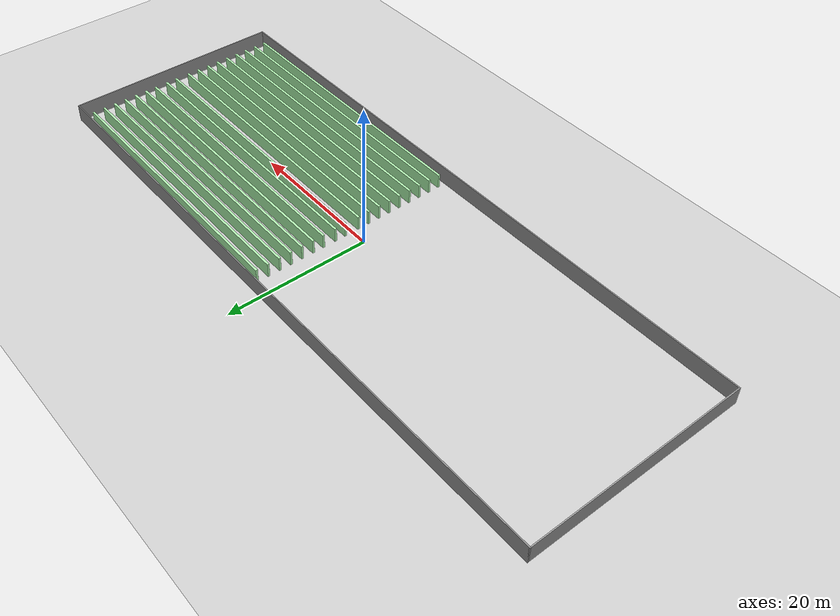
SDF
<sdf version="1.7">
 <world name="default">
  <model name="ground_plane">
   <static>1</static>
   <link name="link">
    <collision name="collision">
     <geometry><plane><normal>0 0 1</normal><size>100 100</size></plane></geometry>
     <surface>
      <contact><collide_bitmask>65535</collide_bitmask></contact>
      <friction><ode><mu>100</mu><mu2>50</mu2></ode></friction>
     </surface>
    </collision>
    <visual name="visual">
     <cast_shadows>0</cast_shadows>
     <geometry><plane><normal>0 0 1</normal><size>100 100</size></plane></geometry>
     <material>
      <script><uri>file://media/materials/scripts/gazebo.material</uri><name>Gazebo/Grey</name></script>
     </material>
    </visual>
   </link>
  </model>
  <model name="med_inv_real">
   <link name="Wall_0">
    <collision name="Wall_0_Collision">
     <geometry><box><size>88.75 0.15 2.5</size></box></geometry>
     <pose>0 0 1.25 0 -0 0</pose>
    </collision>
    <visual name="Wall_0_Visual">
     <pose>0 0 1.25 0 -0 0</pose>
     <geometry><box><size>88.75 0.15 2.5</size></box></geometry>
     <material>
      <script><uri>file://media/materials/scripts/gazebo.material</uri><name>Gazebo/Grey</name></script>
      <ambient>1 1 1 1</ambient>
     </material>
     <meta><layer>0</layer></meta>
    </visual>
    <pose>0 15.375 0 0 -0 0</pose>
   </link>
   <link name="Wall_2">
    <collision name="Wall_2_Collision">
     <geometry><box><size>30.9 0.15 2.5</size></box></geometry>
     <pose>0 0 1.25 0 -0 0</pose>
    </collision>
    <visual name="Wall_2_Visual">
     <pose>0 0 1.25 0 -0 0</pose>
     <geometry><box><size>30.9 0.15 2.5</size></box></geometry>
     <material>
      <script><uri>file://media/materials/scripts/gazebo.material</uri><name>Gazebo/Grey</name></script>
      <ambient>1 1 1 1</ambient>
     </material>
     <meta><layer>0</layer></meta>
    </visual>
    <pose>-44.3 0 0 0 -0 -1.5708</pose>
   </link>
   <link name="Wall_3">
    <collision name="Wall_3_Collision">
     <geometry><box><size>88.75 0.15 2.5</size></box></geometry>
     <pose>0 0 1.25 0 -0 0</pose>
    </collision>
    <visual name="Wall_3_Visual">
     <pose>0 0 1.25 0 -0 0</pose>
     <geometry><box><size>88.75 0.15 2.5</size></box></geometry>
     <material>
      <script><uri>file://media/materials/scripts/gazebo.material</uri><name>Gazebo/Grey</name></script>
      <ambient>1 1 1 1</ambient>
     </material>
     <meta><layer>0</layer></meta>
    </visual>
    <pose>0 -15.375 0 0 -0 0</pose>
   </link>
   <link name="Wall_4">
    <collision name="Wall_4_Collision">
     <geometry><box><size>30.9 0.15 2.5</size></box></geometry>
     <pose>0 0 1.25 0 -0 0</pose>
    </collision>
    <visual name="Wall_4_Visual">
     <pose>0 0 1.25 0 -0 0</pose>
     <geometry><box><size>30.9 0.15 2.5</size></box></geometry>
     <material>
      <script><uri>file://media/materials/scripts/gazebo.material</uri><name>Gazebo/Grey</name></script>
      <ambient>1 1 1 1</ambient>
     </material>
     <meta><layer>0</layer></meta>
    </visual>
    <pose>44.3 0 0 0 -0 1.5708</pose>
   </link>
   <static>1</static>
  </model>
  <model name="carril_inv_real_clone_5">
   <link name="link_0">
    <inertial>
     <mass>400</mass>
     <inertia><ixx>66.6667</ixx><ixy>0</ixy><ixz>0</ixz><iyy>53366.7</iyy><iyz>0</iyz><izz>53366.7</izz></inertia>
    </inertial>
    <visual name="visual">
     <geometry><box><size>40 0.3 2</size></box></geometry>
     <material>
      <lighting>1</lighting>
      <script><uri>file://media/materials/scripts/gazebo.material</uri><name>Gazebo/Grey</name></script>
      <shader type="pixel"><normal_map>__default__</normal_map></shader>
      <ambient>0.3 0.3 0.3 1</ambient>
      <diffuse>0.7 1 0.7 1</diffuse>
      <specular>0.01 1 0.01 1</specular>
      <emissive>0 1 0 1</emissive>
     </material>
    </visual>
    <collision name="collision">
     <geometry><box><size>40 0.3 2</size></box></geometry>
     <surface>
      <friction>
       <ode><mu>1</mu><mu2>1</mu2><fdir1>0 0 0</fdir1><slip1>0</slip1><slip2>0</slip2></ode>
       <torsional>
        <coefficient>1</coefficient>
        <patch_radius>0</patch_radius>
        <surface_radius>0</surface_radius>
        <use_patch_radius>1</use_patch_radius>
        <ode><slip>0</slip></ode>
       </torsional>
      </friction>
      <bounce><restitution_coefficient>0</restitution_coefficient><threshold>1e+06</threshold></bounce>
      <contact>
       <collide_without_contact>0</collide_without_contact>
       <collide_without_contact_bitmask>1</collide_without_contact_bitmask>
       <collide_bitmask>1</collide_bitmask>
       <ode>
        <soft_cfm>0</soft_cfm>
        <soft_erp>0.2</soft_erp>
        <kp>1e+13</kp>
        <kd>1</kd>
        <max_vel>0.01</max_vel>
        <min_depth>0</min_depth>
       </ode>
       <bullet>
        <split_impulse>1</split_impulse>
        <split_impulse_penetration_threshold>-0.01</split_impulse_penetration_threshold>
        <soft_cfm>0</soft_cfm>
        <soft_erp>0.2</soft_erp>
        <kp>1e+13</kp>
        <kd>1</kd>
       </bullet>
      </contact>
     </surface>
    </collision>
   </link>
   <static>0</static>
   <pose>22.3 14.225 0.999986 0 -1e-06 -6.1e-05</pose>
  </model>
  <model name="carril_inv_real_clone_8">
   <link name="link_0">
    <inertial>
     <mass>400</mass>
     <inertia><ixx>66.6667</ixx><ixy>0</ixy><ixz>0</ixz><iyy>53366.7</iyy><iyz>0</iyz><izz>53366.7</izz></inertia>
    </inertial>
    <visual name="visual">
     <geometry><box><size>40 0.3 2</size></box></geometry>
     <material>
      <lighting>1</lighting>
      <script><uri>file://media/materials/scripts/gazebo.material</uri><name>Gazebo/Grey</name></script>
      <shader type="pixel"><normal_map>__default__</normal_map></shader>
      <ambient>0.3 0.3 0.3 1</ambient>
      <diffuse>0.7 1 0.7 1</diffuse>
      <specular>0.01 1 0.01 1</specular>
      <emissive>0 1 0 1</emissive>
     </material>
    </visual>
    <collision name="collision">
     <geometry><box><size>40 0.3 2</size></box></geometry>
     <surface>
      <friction>
       <ode><mu>1</mu><mu2>1</mu2><fdir1>0 0 0</fdir1><slip1>0</slip1><slip2>0</slip2></ode>
       <torsional>
        <coefficient>1</coefficient>
        <patch_radius>0</patch_radius>
        <surface_radius>0</surface_radius>
        <use_patch_radius>1</use_patch_radius>
        <ode><slip>0</slip></ode>
       </torsional>
      </friction>
      <bounce><restitution_coefficient>0</restitution_coefficient><threshold>1e+06</threshold></bounce>
      <contact>
       <collide_without_contact>0</collide_without_contact>
       <collide_without_contact_bitmask>1</collide_without_contact_bitmask>
       <collide_bitmask>1</collide_bitmask>
       <ode>
        <soft_cfm>0</soft_cfm>
        <soft_erp>0.2</soft_erp>
        <kp>1e+13</kp>
        <kd>1</kd>
        <max_vel>0.01</max_vel>
        <min_depth>0</min_depth>
       </ode>
       <bullet>
        <split_impulse>1</split_impulse>
        <split_impulse_penetration_threshold>-0.01</split_impulse_penetration_threshold>
        <soft_cfm>0</soft_cfm>
        <soft_erp>0.2</soft_erp>
        <kp>1e+13</kp>
        <kd>1</kd>
       </bullet>
      </contact>
     </surface>
    </collision>
   </link>
   <static>0</static>
   <pose>22.3 12.575 0.999986 0 -1e-06 -8e-05</pose>
  </model>
  <model name="carril_inv_real_clone_9">
   <link name="link_0">
    <inertial>
     <mass>400</mass>
     <inertia><ixx>66.6667</ixx><ixy>0</ixy><ixz>0</ixz><iyy>53366.7</iyy><iyz>0</iyz><izz>53366.7</izz></inertia>
    </inertial>
    <visual name="visual">
     <geometry><box><size>40 0.3 2</size></box></geometry>
     <material>
      <lighting>1</lighting>
      <script><uri>file://media/materials/scripts/gazebo.material</uri><name>Gazebo/Grey</name></script>
      <shader type="pixel"><normal_map>__default__</normal_map></shader>
      <ambient>0.3 0.3 0.3 1</ambient>
      <diffuse>0.7 1 0.7 1</diffuse>
      <specular>0.01 1 0.01 1</specular>
      <emissive>0 1 0 1</emissive>
     </material>
    </visual>
    <collision name="collision">
     <geometry><box><size>40 0.3 2</size></box></geometry>
     <surface>
      <friction>
       <ode><mu>1</mu><mu2>1</mu2><fdir1>0 0 0</fdir1><slip1>0</slip1><slip2>0</slip2></ode>
       <torsional>
        <coefficient>1</coefficient>
        <patch_radius>0</patch_radius>
        <surface_radius>0</surface_radius>
        <use_patch_radius>1</use_patch_radius>
        <ode><slip>0</slip></ode>
       </torsional>
      </friction>
      <bounce><restitution_coefficient>0</restitution_coefficient><threshold>1e+06</threshold></bounce>
      <contact>
       <collide_without_contact>0</collide_without_contact>
       <collide_without_contact_bitmask>1</collide_without_contact_bitmask>
       <collide_bitmask>1</collide_bitmask>
       <ode>
        <soft_cfm>0</soft_cfm>
        <soft_erp>0.2</soft_erp>
        <kp>1e+13</kp>
        <kd>1</kd>
        <max_vel>0.01</max_vel>
        <min_depth>0</min_depth>
       </ode>
       <bullet>
        <split_impulse>1</split_impulse>
        <split_impulse_penetration_threshold>-0.01</split_impulse_penetration_threshold>
        <soft_cfm>0</soft_cfm>
        <soft_erp>0.2</soft_erp>
        <kp>1e+13</kp>
        <kd>1</kd>
       </bullet>
      </contact>
     </surface>
    </collision>
   </link>
   <static>0</static>
   <pose>22.3 10.925 0.999986 -0 1e-06 -8.5e-05</pose>
  </model>
  <model name="carril_inv_real_clone_10">
   <link name="link_0">
    <inertial>
     <mass>400</mass>
     <inertia><ixx>66.6667</ixx><ixy>0</ixy><ixz>0</ixz><iyy>53366.7</iyy><iyz>0</iyz><izz>53366.7</izz></inertia>
    </inertial>
    <visual name="visual">
     <geometry><box><size>40 0.3 2</size></box></geometry>
     <material>
      <lighting>1</lighting>
      <script><uri>file://media/materials/scripts/gazebo.material</uri><name>Gazebo/Grey</name></script>
      <shader type="pixel"><normal_map>__default__</normal_map></shader>
      <ambient>0.3 0.3 0.3 1</ambient>
      <diffuse>0.7 1 0.7 1</diffuse>
      <specular>0.01 1 0.01 1</specular>
      <emissive>0 1 0 1</emissive>
     </material>
    </visual>
    <collision name="collision">
     <geometry><box><size>40 0.3 2</size></box></geometry>
     <surface>
      <friction>
       <ode><mu>1</mu><mu2>1</mu2><fdir1>0 0 0</fdir1><slip1>0</slip1><slip2>0</slip2></ode>
       <torsional>
        <coefficient>1</coefficient>
        <patch_radius>0</patch_radius>
        <surface_radius>0</surface_radius>
        <use_patch_radius>1</use_patch_radius>
        <ode><slip>0</slip></ode>
       </torsional>
      </friction>
      <bounce><restitution_coefficient>0</restitution_coefficient><threshold>1e+06</threshold></bounce>
      <contact>
       <collide_without_contact>0</collide_without_contact>
       <collide_without_contact_bitmask>1</collide_without_contact_bitmask>
       <collide_bitmask>1</collide_bitmask>
       <ode>
        <soft_cfm>0</soft_cfm>
        <soft_erp>0.2</soft_erp>
        <kp>1e+13</kp>
        <kd>1</kd>
        <max_vel>0.01</max_vel>
        <min_depth>0</min_depth>
       </ode>
       <bullet>
        <split_impulse>1</split_impulse>
        <split_impulse_penetration_threshold>-0.01</split_impulse_penetration_threshold>
        <soft_cfm>0</soft_cfm>
        <soft_erp>0.2</soft_erp>
        <kp>1e+13</kp>
        <kd>1</kd>
       </bullet>
      </contact>
     </surface>
    </collision>
   </link>
   <static>0</static>
   <pose>22.3 9.275 0.999986 -0 -1e-06 -9.2e-05</pose>
  </model>
  <model name="carril_inv_real_clone_11">
   <link name="link_0">
    <inertial>
     <mass>400</mass>
     <inertia><ixx>66.6667</ixx><ixy>0</ixy><ixz>0</ixz><iyy>53366.7</iyy><iyz>0</iyz><izz>53366.7</izz></inertia>
    </inertial>
    <visual name="visual">
     <geometry><box><size>40 0.3 2</size></box></geometry>
     <material>
      <lighting>1</lighting>
      <script><uri>file://media/materials/scripts/gazebo.material</uri><name>Gazebo/Grey</name></script>
      <shader type="pixel"><normal_map>__default__</normal_map></shader>
      <ambient>0.3 0.3 0.3 1</ambient>
      <diffuse>0.7 1 0.7 1</diffuse>
      <specular>0.01 1 0.01 1</specular>
      <emissive>0 1 0 1</emissive>
     </material>
    </visual>
    <collision name="collision">
     <geometry><box><size>40 0.3 2</size></box></geometry>
     <surface>
      <friction>
       <ode><mu>1</mu><mu2>1</mu2><fdir1>0 0 0</fdir1><slip1>0</slip1><slip2>0</slip2></ode>
       <torsional>
        <coefficient>1</coefficient>
        <patch_radius>0</patch_radius>
        <surface_radius>0</surface_radius>
        <use_patch_radius>1</use_patch_radius>
        <ode><slip>0</slip></ode>
       </torsional>
      </friction>
      <bounce><restitution_coefficient>0</restitution_coefficient><threshold>1e+06</threshold></bounce>
      <contact>
       <collide_without_contact>0</collide_without_contact>
       <collide_without_contact_bitmask>1</collide_without_contact_bitmask>
       <collide_bitmask>1</collide_bitmask>
       <ode>
        <soft_cfm>0</soft_cfm>
        <soft_erp>0.2</soft_erp>
        <kp>1e+13</kp>
        <kd>1</kd>
        <max_vel>0.01</max_vel>
        <min_depth>0</min_depth>
       </ode>
       <bullet>
        <split_impulse>1</split_impulse>
        <split_impulse_penetration_threshold>-0.01</split_impulse_penetration_threshold>
        <soft_cfm>0</soft_cfm>
        <soft_erp>0.2</soft_erp>
        <kp>1e+13</kp>
        <kd>1</kd>
       </bullet>
      </contact>
     </surface>
    </collision>
   </link>
   <static>0</static>
   <pose>22.3 7.625 0.999986 -0 1e-06 -9.9e-05</pose>
  </model>
  <model name="carril_inv_real_clone_12">
   <link name="link_0">
    <inertial>
     <mass>400</mass>
     <inertia><ixx>66.6667</ixx><ixy>0</ixy><ixz>0</ixz><iyy>53366.7</iyy><iyz>0</iyz><izz>53366.7</izz></inertia>
    </inertial>
    <visual name="visual">
     <geometry><box><size>40 0.3 2</size></box></geometry>
     <material>
      <lighting>1</lighting>
      <script><uri>file://media/materials/scripts/gazebo.material</uri><name>Gazebo/Grey</name></script>
      <shader type="pixel"><normal_map>__default__</normal_map></shader>
      <ambient>0.3 0.3 0.3 1</ambient>
      <diffuse>0.7 1 0.7 1</diffuse>
      <specular>0.01 1 0.01 1</specular>
      <emissive>0 1 0 1</emissive>
     </material>
    </visual>
    <collision name="collision">
     <geometry><box><size>40 0.3 2</size></box></geometry>
     <surface>
      <friction>
       <ode><mu>1</mu><mu2>1</mu2><fdir1>0 0 0</fdir1><slip1>0</slip1><slip2>0</slip2></ode>
       <torsional>
        <coefficient>1</coefficient>
        <patch_radius>0</patch_radius>
        <surface_radius>0</surface_radius>
        <use_patch_radius>1</use_patch_radius>
        <ode><slip>0</slip></ode>
       </torsional>
      </friction>
      <bounce><restitution_coefficient>0</restitution_coefficient><threshold>1e+06</threshold></bounce>
      <contact>
       <collide_without_contact>0</collide_without_contact>
       <collide_without_contact_bitmask>1</collide_without_contact_bitmask>
       <collide_bitmask>1</collide_bitmask>
       <ode>
        <soft_cfm>0</soft_cfm>
        <soft_erp>0.2</soft_erp>
        <kp>1e+13</kp>
        <kd>1</kd>
        <max_vel>0.01</max_vel>
        <min_depth>0</min_depth>
       </ode>
       <bullet>
        <split_impulse>1</split_impulse>
        <split_impulse_penetration_threshold>-0.01</split_impulse_penetration_threshold>
        <soft_cfm>0</soft_cfm>
        <soft_erp>0.2</soft_erp>
        <kp>1e+13</kp>
        <kd>1</kd>
       </bullet>
      </contact>
     </surface>
    </collision>
   </link>
   <static>0</static>
   <pose>22.2999 5.96785 0.999998 0 -0 0.000147</pose>
  </model>
  <model name="carril_inv_real_clone_13">
   <link name="link_0">
    <inertial>
     <mass>400</mass>
     <inertia><ixx>66.6667</ixx><ixy>0</ixy><ixz>0</ixz><iyy>53366.7</iyy><iyz>0</iyz><izz>53366.7</izz></inertia>
    </inertial>
    <visual name="visual">
     <geometry><box><size>40 0.3 2</size></box></geometry>
     <material>
      <lighting>1</lighting>
      <script><uri>file://media/materials/scripts/gazebo.material</uri><name>Gazebo/Grey</name></script>
      <shader type="pixel"><normal_map>__default__</normal_map></shader>
      <ambient>0.3 0.3 0.3 1</ambient>
      <diffuse>0.7 1 0.7 1</diffuse>
      <specular>0.01 1 0.01 1</specular>
      <emissive>0 1 0 1</emissive>
     </material>
    </visual>
    <collision name="collision">
     <geometry><box><size>40 0.3 2</size></box></geometry>
     <surface>
      <friction>
       <ode><mu>1</mu><mu2>1</mu2><fdir1>0 0 0</fdir1><slip1>0</slip1><slip2>0</slip2></ode>
       <torsional>
        <coefficient>1</coefficient>
        <patch_radius>0</patch_radius>
        <surface_radius>0</surface_radius>
        <use_patch_radius>1</use_patch_radius>
        <ode><slip>0</slip></ode>
       </torsional>
      </friction>
      <bounce><restitution_coefficient>0</restitution_coefficient><threshold>1e+06</threshold></bounce>
      <contact>
       <collide_without_contact>0</collide_without_contact>
       <collide_without_contact_bitmask>1</collide_without_contact_bitmask>
       <collide_bitmask>1</collide_bitmask>
       <ode>
        <soft_cfm>0</soft_cfm>
        <soft_erp>0.2</soft_erp>
        <kp>1e+13</kp>
        <kd>1</kd>
        <max_vel>0.01</max_vel>
        <min_depth>0</min_depth>
       </ode>
       <bullet>
        <split_impulse>1</split_impulse>
        <split_impulse_penetration_threshold>-0.01</split_impulse_penetration_threshold>
        <soft_cfm>0</soft_cfm>
        <soft_erp>0.2</soft_erp>
        <kp>1e+13</kp>
        <kd>1</kd>
       </bullet>
      </contact>
     </surface>
    </collision>
   </link>
   <static>0</static>
   <pose>22.3 4.408 0.999986 0 -1e-06 -0.000306</pose>
  </model>
  <model name="carril_inv_real_clone_14">
   <link name="link_0">
    <inertial>
     <mass>400</mass>
     <inertia><ixx>66.6667</ixx><ixy>0</ixy><ixz>0</ixz><iyy>53366.7</iyy><iyz>0</iyz><izz>53366.7</izz></inertia>
    </inertial>
    <visual name="visual">
     <geometry><box><size>40 0.3 2</size></box></geometry>
     <material>
      <lighting>1</lighting>
      <script><uri>file://media/materials/scripts/gazebo.material</uri><name>Gazebo/Grey</name></script>
      <shader type="pixel"><normal_map>__default__</normal_map></shader>
      <ambient>0.3 0.3 0.3 1</ambient>
      <diffuse>0.7 1 0.7 1</diffuse>
      <specular>0.01 1 0.01 1</specular>
      <emissive>0 1 0 1</emissive>
     </material>
    </visual>
    <collision name="collision">
     <geometry><box><size>40 0.3 2</size></box></geometry>
     <surface>
      <friction>
       <ode><mu>1</mu><mu2>1</mu2><fdir1>0 0 0</fdir1><slip1>0</slip1><slip2>0</slip2></ode>
       <torsional>
        <coefficient>1</coefficient>
        <patch_radius>0</patch_radius>
        <surface_radius>0</surface_radius>
        <use_patch_radius>1</use_patch_radius>
        <ode><slip>0</slip></ode>
       </torsional>
      </friction>
      <bounce><restitution_coefficient>0</restitution_coefficient><threshold>1e+06</threshold></bounce>
      <contact>
       <collide_without_contact>0</collide_without_contact>
       <collide_without_contact_bitmask>1</collide_without_contact_bitmask>
       <collide_bitmask>1</collide_bitmask>
       <ode>
        <soft_cfm>0</soft_cfm>
        <soft_erp>0.2</soft_erp>
        <kp>1e+13</kp>
        <kd>1</kd>
        <max_vel>0.01</max_vel>
        <min_depth>0</min_depth>
       </ode>
       <bullet>
        <split_impulse>1</split_impulse>
        <split_impulse_penetration_threshold>-0.01</split_impulse_penetration_threshold>
        <soft_cfm>0</soft_cfm>
        <soft_erp>0.2</soft_erp>
        <kp>1e+13</kp>
        <kd>1</kd>
       </bullet>
      </contact>
     </surface>
    </collision>
   </link>
   <static>0</static>
   <pose>22.2999 2.56418 0.999986 0 1e-06 -0.000119</pose>
  </model>
  <model name="carril_inv_real_clone_15">
   <link name="link_0">
    <inertial>
     <mass>400</mass>
     <inertia><ixx>66.6667</ixx><ixy>0</ixy><ixz>0</ixz><iyy>53366.7</iyy><iyz>0</iyz><izz>53366.7</izz></inertia>
    </inertial>
    <visual name="visual">
     <geometry><box><size>40 0.3 2</size></box></geometry>
     <material>
      <lighting>1</lighting>
      <script><uri>file://media/materials/scripts/gazebo.material</uri><name>Gazebo/Grey</name></script>
      <shader type="pixel"><normal_map>__default__</normal_map></shader>
      <ambient>0.3 0.3 0.3 1</ambient>
      <diffuse>0.7 1 0.7 1</diffuse>
      <specular>0.01 1 0.01 1</specular>
      <emissive>0 1 0 1</emissive>
     </material>
    </visual>
    <collision name="collision">
     <geometry><box><size>40 0.3 2</size></box></geometry>
     <surface>
      <friction>
       <ode><mu>1</mu><mu2>1</mu2><fdir1>0 0 0</fdir1><slip1>0</slip1><slip2>0</slip2></ode>
       <torsional>
        <coefficient>1</coefficient>
        <patch_radius>0</patch_radius>
        <surface_radius>0</surface_radius>
        <use_patch_radius>1</use_patch_radius>
        <ode><slip>0</slip></ode>
       </torsional>
      </friction>
      <bounce><restitution_coefficient>0</restitution_coefficient><threshold>1e+06</threshold></bounce>
      <contact>
       <collide_without_contact>0</collide_without_contact>
       <collide_without_contact_bitmask>1</collide_without_contact_bitmask>
       <collide_bitmask>1</collide_bitmask>
       <ode>
        <soft_cfm>0</soft_cfm>
        <soft_erp>0.2</soft_erp>
        <kp>1e+13</kp>
        <kd>1</kd>
        <max_vel>0.01</max_vel>
        <min_depth>0</min_depth>
       </ode>
       <bullet>
        <split_impulse>1</split_impulse>
        <split_impulse_penetration_threshold>-0.01</split_impulse_penetration_threshold>
        <soft_cfm>0</soft_cfm>
        <soft_erp>0.2</soft_erp>
        <kp>1e+13</kp>
        <kd>1</kd>
       </bullet>
      </contact>
     </surface>
    </collision>
   </link>
   <static>0</static>
   <pose>22.3 1.01881 0.999998 0 0 -0.000526</pose>
  </model>
  <model name="carril_inv_real_clone_15_clone">
   <link name="link_0">
    <inertial>
     <mass>400</mass>
     <inertia><ixx>66.6667</ixx><ixy>0</ixy><ixz>0</ixz><iyy>53366.7</iyy><iyz>0</iyz><izz>53366.7</izz></inertia>
    </inertial>
    <visual name="visual">
     <geometry><box><size>40 0.3 2</size></box></geometry>
     <material>
      <lighting>1</lighting>
      <script><uri>file://media/materials/scripts/gazebo.material</uri><name>Gazebo/Grey</name></script>
      <shader type="pixel"><normal_map>__default__</normal_map></shader>
      <ambient>0.3 0.3 0.3 1</ambient>
      <diffuse>0.7 1 0.7 1</diffuse>
      <specular>0.01 1 0.01 1</specular>
      <emissive>0 1 0 1</emissive>
     </material>
    </visual>
    <collision name="collision">
     <geometry><box><size>40 0.3 2</size></box></geometry>
     <surface>
      <friction>
       <ode><mu>1</mu><mu2>1</mu2><fdir1>0 0 0</fdir1><slip1>0</slip1><slip2>0</slip2></ode>
       <torsional>
        <coefficient>1</coefficient>
        <patch_radius>0</patch_radius>
        <surface_radius>0</surface_radius>
        <use_patch_radius>1</use_patch_radius>
        <ode><slip>0</slip></ode>
       </torsional>
      </friction>
      <bounce><restitution_coefficient>0</restitution_coefficient><threshold>1e+06</threshold></bounce>
      <contact>
       <collide_without_contact>0</collide_without_contact>
       <collide_without_contact_bitmask>1</collide_without_contact_bitmask>
       <collide_bitmask>1</collide_bitmask>
       <ode>
        <soft_cfm>0</soft_cfm>
        <soft_erp>0.2</soft_erp>
        <kp>1e+13</kp>
        <kd>1</kd>
        <max_vel>0.01</max_vel>
        <min_depth>0</min_depth>
       </ode>
       <bullet>
        <split_impulse>1</split_impulse>
        <split_impulse_penetration_threshold>-0.01</split_impulse_penetration_threshold>
        <soft_cfm>0</soft_cfm>
        <soft_erp>0.2</soft_erp>
        <kp>1e+13</kp>
        <kd>1</kd>
       </bullet>
      </contact>
     </surface>
    </collision>
   </link>
   <static>0</static>
   <pose>22.3 -1.02858 1 0 -0 -0.000525</pose>
  </model>
  <model name="carril_inv_real_clone_15_clone_0">
   <link name="link_0">
    <inertial>
     <mass>400</mass>
     <inertia><ixx>66.6667</ixx><ixy>0</ixy><ixz>0</ixz><iyy>53366.7</iyy><iyz>0</iyz><izz>53366.7</izz></inertia>
    </inertial>
    <visual name="visual">
     <geometry><box><size>40 0.3 2</size></box></geometry>
     <material>
      <lighting>1</lighting>
      <script><uri>file://media/materials/scripts/gazebo.material</uri><name>Gazebo/Grey</name></script>
      <shader type="pixel"><normal_map>__default__</normal_map></shader>
      <ambient>0.3 0.3 0.3 1</ambient>
      <diffuse>0.7 1 0.7 1</diffuse>
      <specular>0.01 1 0.01 1</specular>
      <emissive>0 1 0 1</emissive>
     </material>
    </visual>
    <collision name="collision">
     <geometry><box><size>40 0.3 2</size></box></geometry>
     <surface>
      <friction>
       <ode><mu>1</mu><mu2>1</mu2><fdir1>0 0 0</fdir1><slip1>0</slip1><slip2>0</slip2></ode>
       <torsional>
        <coefficient>1</coefficient>
        <patch_radius>0</patch_radius>
        <surface_radius>0</surface_radius>
        <use_patch_radius>1</use_patch_radius>
        <ode><slip>0</slip></ode>
       </torsional>
      </friction>
      <bounce><restitution_coefficient>0</restitution_coefficient><threshold>1e+06</threshold></bounce>
      <contact>
       <collide_without_contact>0</collide_without_contact>
       <collide_without_contact_bitmask>1</collide_without_contact_bitmask>
       <collide_bitmask>1</collide_bitmask>
       <ode>
        <soft_cfm>0</soft_cfm>
        <soft_erp>0.2</soft_erp>
        <kp>1e+13</kp>
        <kd>1</kd>
        <max_vel>0.01</max_vel>
        <min_depth>0</min_depth>
       </ode>
       <bullet>
        <split_impulse>1</split_impulse>
        <split_impulse_penetration_threshold>-0.01</split_impulse_penetration_threshold>
        <soft_cfm>0</soft_cfm>
        <soft_erp>0.2</soft_erp>
        <kp>1e+13</kp>
        <kd>1</kd>
       </bullet>
      </contact>
     </surface>
    </collision>
   </link>
   <static>0</static>
   <pose>22.3 -2.67825 0.999998 0 0 -0.000517</pose>
  </model>
  <model name="carril_inv_real_clone_15_clone_1">
   <link name="link_0">
    <inertial>
     <mass>400</mass>
     <inertia><ixx>66.6667</ixx><ixy>0</ixy><ixz>0</ixz><iyy>53366.7</iyy><iyz>0</iyz><izz>53366.7</izz></inertia>
    </inertial>
    <visual name="visual">
     <geometry><box><size>40 0.3 2</size></box></geometry>
     <material>
      <lighting>1</lighting>
      <script><uri>file://media/materials/scripts/gazebo.material</uri><name>Gazebo/Grey</name></script>
      <shader type="pixel"><normal_map>__default__</normal_map></shader>
      <ambient>0.3 0.3 0.3 1</ambient>
      <diffuse>0.7 1 0.7 1</diffuse>
      <specular>0.01 1 0.01 1</specular>
      <emissive>0 1 0 1</emissive>
     </material>
    </visual>
    <collision name="collision">
     <geometry><box><size>40 0.3 2</size></box></geometry>
     <surface>
      <friction>
       <ode><mu>1</mu><mu2>1</mu2><fdir1>0 0 0</fdir1><slip1>0</slip1><slip2>0</slip2></ode>
       <torsional>
        <coefficient>1</coefficient>
        <patch_radius>0</patch_radius>
        <surface_radius>0</surface_radius>
        <use_patch_radius>1</use_patch_radius>
        <ode><slip>0</slip></ode>
       </torsional>
      </friction>
      <bounce><restitution_coefficient>0</restitution_coefficient><threshold>1e+06</threshold></bounce>
      <contact>
       <collide_without_contact>0</collide_without_contact>
       <collide_without_contact_bitmask>1</collide_without_contact_bitmask>
       <collide_bitmask>1</collide_bitmask>
       <ode>
        <soft_cfm>0</soft_cfm>
        <soft_erp>0.2</soft_erp>
        <kp>1e+13</kp>
        <kd>1</kd>
        <max_vel>0.01</max_vel>
        <min_depth>0</min_depth>
       </ode>
       <bullet>
        <split_impulse>1</split_impulse>
        <split_impulse_penetration_threshold>-0.01</split_impulse_penetration_threshold>
        <soft_cfm>0</soft_cfm>
        <soft_erp>0.2</soft_erp>
        <kp>1e+13</kp>
        <kd>1</kd>
       </bullet>
      </contact>
     </surface>
    </collision>
   </link>
   <static>0</static>
   <pose>22.3 -4.32793 1 0 -0 -0.000502</pose>
  </model>
  <model name="carril_inv_real_clone_15_clone_2">
   <link name="link_0">
    <inertial>
     <mass>400</mass>
     <inertia><ixx>66.6667</ixx><ixy>0</ixy><ixz>0</ixz><iyy>53366.7</iyy><iyz>0</iyz><izz>53366.7</izz></inertia>
    </inertial>
    <visual name="visual">
     <geometry><box><size>40 0.3 2</size></box></geometry>
     <material>
      <lighting>1</lighting>
      <script><uri>file://media/materials/scripts/gazebo.material</uri><name>Gazebo/Grey</name></script>
      <shader type="pixel"><normal_map>__default__</normal_map></shader>
      <ambient>0.3 0.3 0.3 1</ambient>
      <diffuse>0.7 1 0.7 1</diffuse>
      <specular>0.01 1 0.01 1</specular>
      <emissive>0 1 0 1</emissive>
     </material>
    </visual>
    <collision name="collision">
     <geometry><box><size>40 0.3 2</size></box></geometry>
     <surface>
      <friction>
       <ode><mu>1</mu><mu2>1</mu2><fdir1>0 0 0</fdir1><slip1>0</slip1><slip2>0</slip2></ode>
       <torsional>
        <coefficient>1</coefficient>
        <patch_radius>0</patch_radius>
        <surface_radius>0</surface_radius>
        <use_patch_radius>1</use_patch_radius>
        <ode><slip>0</slip></ode>
       </torsional>
      </friction>
      <bounce><restitution_coefficient>0</restitution_coefficient><threshold>1e+06</threshold></bounce>
      <contact>
       <collide_without_contact>0</collide_without_contact>
       <collide_without_contact_bitmask>1</collide_without_contact_bitmask>
       <collide_bitmask>1</collide_bitmask>
       <ode>
        <soft_cfm>0</soft_cfm>
        <soft_erp>0.2</soft_erp>
        <kp>1e+13</kp>
        <kd>1</kd>
        <max_vel>0.01</max_vel>
        <min_depth>0</min_depth>
       </ode>
       <bullet>
        <split_impulse>1</split_impulse>
        <split_impulse_penetration_threshold>-0.01</split_impulse_penetration_threshold>
        <soft_cfm>0</soft_cfm>
        <soft_erp>0.2</soft_erp>
        <kp>1e+13</kp>
        <kd>1</kd>
       </bullet>
      </contact>
     </surface>
    </collision>
   </link>
   <static>0</static>
   <pose>22.3 -5.9776 0.999998 0 0 -0.000494</pose>
  </model>
  <model name="carril_inv_real_clone_15_clone_3">
   <link name="link_0">
    <inertial>
     <mass>400</mass>
     <inertia><ixx>66.6667</ixx><ixy>0</ixy><ixz>0</ixz><iyy>53366.7</iyy><iyz>0</iyz><izz>53366.7</izz></inertia>
    </inertial>
    <visual name="visual">
     <geometry><box><size>40 0.3 2</size></box></geometry>
     <material>
      <lighting>1</lighting>
      <script><uri>file://media/materials/scripts/gazebo.material</uri><name>Gazebo/Grey</name></script>
      <shader type="pixel"><normal_map>__default__</normal_map></shader>
      <ambient>0.3 0.3 0.3 1</ambient>
      <diffuse>0.7 1 0.7 1</diffuse>
      <specular>0.01 1 0.01 1</specular>
      <emissive>0 1 0 1</emissive>
     </material>
    </visual>
    <collision name="collision">
     <geometry><box><size>40 0.3 2</size></box></geometry>
     <surface>
      <friction>
       <ode><mu>1</mu><mu2>1</mu2><fdir1>0 0 0</fdir1><slip1>0</slip1><slip2>0</slip2></ode>
       <torsional>
        <coefficient>1</coefficient>
        <patch_radius>0</patch_radius>
        <surface_radius>0</surface_radius>
        <use_patch_radius>1</use_patch_radius>
        <ode><slip>0</slip></ode>
       </torsional>
      </friction>
      <bounce><restitution_coefficient>0</restitution_coefficient><threshold>1e+06</threshold></bounce>
      <contact>
       <collide_without_contact>0</collide_without_contact>
       <collide_without_contact_bitmask>1</collide_without_contact_bitmask>
       <collide_bitmask>1</collide_bitmask>
       <ode>
        <soft_cfm>0</soft_cfm>
        <soft_erp>0.2</soft_erp>
        <kp>1e+13</kp>
        <kd>1</kd>
        <max_vel>0.01</max_vel>
        <min_depth>0</min_depth>
       </ode>
       <bullet>
        <split_impulse>1</split_impulse>
        <split_impulse_penetration_threshold>-0.01</split_impulse_penetration_threshold>
        <soft_cfm>0</soft_cfm>
        <soft_erp>0.2</soft_erp>
        <kp>1e+13</kp>
        <kd>1</kd>
       </bullet>
      </contact>
     </surface>
    </collision>
   </link>
   <static>0</static>
   <pose>22.3 -7.62695 0.999998 0 0 -0.000468</pose>
  </model>
  <model name="carril_inv_real_clone_15_clone_4">
   <link name="link_0">
    <inertial>
     <mass>400</mass>
     <inertia><ixx>66.6667</ixx><ixy>0</ixy><ixz>0</ixz><iyy>53366.7</iyy><iyz>0</iyz><izz>53366.7</izz></inertia>
    </inertial>
    <visual name="visual">
     <geometry><box><size>40 0.3 2</size></box></geometry>
     <material>
      <lighting>1</lighting>
      <script><uri>file://media/materials/scripts/gazebo.material</uri><name>Gazebo/Grey</name></script>
      <shader type="pixel"><normal_map>__default__</normal_map></shader>
      <ambient>0.3 0.3 0.3 1</ambient>
      <diffuse>0.7 1 0.7 1</diffuse>
      <specular>0.01 1 0.01 1</specular>
      <emissive>0 1 0 1</emissive>
     </material>
    </visual>
    <collision name="collision">
     <geometry><box><size>40 0.3 2</size></box></geometry>
     <surface>
      <friction>
       <ode><mu>1</mu><mu2>1</mu2><fdir1>0 0 0</fdir1><slip1>0</slip1><slip2>0</slip2></ode>
       <torsional>
        <coefficient>1</coefficient>
        <patch_radius>0</patch_radius>
        <surface_radius>0</surface_radius>
        <use_patch_radius>1</use_patch_radius>
        <ode><slip>0</slip></ode>
       </torsional>
      </friction>
      <bounce><restitution_coefficient>0</restitution_coefficient><threshold>1e+06</threshold></bounce>
      <contact>
       <collide_without_contact>0</collide_without_contact>
       <collide_without_contact_bitmask>1</collide_without_contact_bitmask>
       <collide_bitmask>1</collide_bitmask>
       <ode>
        <soft_cfm>0</soft_cfm>
        <soft_erp>0.2</soft_erp>
        <kp>1e+13</kp>
        <kd>1</kd>
        <max_vel>0.01</max_vel>
        <min_depth>0</min_depth>
       </ode>
       <bullet>
        <split_impulse>1</split_impulse>
        <split_impulse_penetration_threshold>-0.01</split_impulse_penetration_threshold>
        <soft_cfm>0</soft_cfm>
        <soft_erp>0.2</soft_erp>
        <kp>1e+13</kp>
        <kd>1</kd>
       </bullet>
      </contact>
     </surface>
    </collision>
   </link>
   <static>0</static>
   <pose>22.3 -9.27663 1 0 -0 -0.000475</pose>
  </model>
  <model name="carril_inv_real_clone_15_clone_5">
   <link name="link_0">
    <inertial>
     <mass>400</mass>
     <inertia><ixx>66.6667</ixx><ixy>0</ixy><ixz>0</ixz><iyy>53366.7</iyy><iyz>0</iyz><izz>53366.7</izz></inertia>
    </inertial>
    <visual name="visual">
     <geometry><box><size>40 0.3 2</size></box></geometry>
     <material>
      <lighting>1</lighting>
      <script><uri>file://media/materials/scripts/gazebo.material</uri><name>Gazebo/Grey</name></script>
      <shader type="pixel"><normal_map>__default__</normal_map></shader>
      <ambient>0.3 0.3 0.3 1</ambient>
      <diffuse>0.7 1 0.7 1</diffuse>
      <specular>0.01 1 0.01 1</specular>
      <emissive>0 1 0 1</emissive>
     </material>
    </visual>
    <collision name="collision">
     <geometry><box><size>40 0.3 2</size></box></geometry>
     <surface>
      <friction>
       <ode><mu>1</mu><mu2>1</mu2><fdir1>0 0 0</fdir1><slip1>0</slip1><slip2>0</slip2></ode>
       <torsional>
        <coefficient>1</coefficient>
        <patch_radius>0</patch_radius>
        <surface_radius>0</surface_radius>
        <use_patch_radius>1</use_patch_radius>
        <ode><slip>0</slip></ode>
       </torsional>
      </friction>
      <bounce><restitution_coefficient>0</restitution_coefficient><threshold>1e+06</threshold></bounce>
      <contact>
       <collide_without_contact>0</collide_without_contact>
       <collide_without_contact_bitmask>1</collide_without_contact_bitmask>
       <collide_bitmask>1</collide_bitmask>
       <ode>
        <soft_cfm>0</soft_cfm>
        <soft_erp>0.2</soft_erp>
        <kp>1e+13</kp>
        <kd>1</kd>
        <max_vel>0.01</max_vel>
        <min_depth>0</min_depth>
       </ode>
       <bullet>
        <split_impulse>1</split_impulse>
        <split_impulse_penetration_threshold>-0.01</split_impulse_penetration_threshold>
        <soft_cfm>0</soft_cfm>
        <soft_erp>0.2</soft_erp>
        <kp>1e+13</kp>
        <kd>1</kd>
       </bullet>
      </contact>
     </surface>
    </collision>
   </link>
   <static>0</static>
   <pose>22.3 -10.9263 0.999998 0 0 -0.000461</pose>
  </model>
  <model name="carril_inv_real_clone_15_clone_6">
   <link name="link_0">
    <inertial>
     <mass>400</mass>
     <inertia><ixx>66.6667</ixx><ixy>0</ixy><ixz>0</ixz><iyy>53366.7</iyy><iyz>0</iyz><izz>53366.7</izz></inertia>
    </inertial>
    <visual name="visual">
     <geometry><box><size>40 0.3 2</size></box></geometry>
     <material>
      <lighting>1</lighting>
      <script><uri>file://media/materials/scripts/gazebo.material</uri><name>Gazebo/Grey</name></script>
      <shader type="pixel"><normal_map>__default__</normal_map></shader>
      <ambient>0.3 0.3 0.3 1</ambient>
      <diffuse>0.7 1 0.7 1</diffuse>
      <specular>0.01 1 0.01 1</specular>
      <emissive>0 1 0 1</emissive>
     </material>
    </visual>
    <collision name="collision">
     <geometry><box><size>40 0.3 2</size></box></geometry>
     <surface>
      <friction>
       <ode><mu>1</mu><mu2>1</mu2><fdir1>0 0 0</fdir1><slip1>0</slip1><slip2>0</slip2></ode>
       <torsional>
        <coefficient>1</coefficient>
        <patch_radius>0</patch_radius>
        <surface_radius>0</surface_radius>
        <use_patch_radius>1</use_patch_radius>
        <ode><slip>0</slip></ode>
       </torsional>
      </friction>
      <bounce><restitution_coefficient>0</restitution_coefficient><threshold>1e+06</threshold></bounce>
      <contact>
       <collide_without_contact>0</collide_without_contact>
       <collide_without_contact_bitmask>1</collide_without_contact_bitmask>
       <collide_bitmask>1</collide_bitmask>
       <ode>
        <soft_cfm>0</soft_cfm>
        <soft_erp>0.2</soft_erp>
        <kp>1e+13</kp>
        <kd>1</kd>
        <max_vel>0.01</max_vel>
        <min_depth>0</min_depth>
       </ode>
       <bullet>
        <split_impulse>1</split_impulse>
        <split_impulse_penetration_threshold>-0.01</split_impulse_penetration_threshold>
        <soft_cfm>0</soft_cfm>
        <soft_erp>0.2</soft_erp>
        <kp>1e+13</kp>
        <kd>1</kd>
       </bullet>
      </contact>
     </surface>
    </collision>
   </link>
   <static>0</static>
   <pose>22.3 -12.576 1 0 -0 -0.000455</pose>
  </model>
  <model name="carril_inv_real_clone_15_clone_7">
   <link name="link_0">
    <inertial>
     <mass>400</mass>
     <inertia><ixx>66.6667</ixx><ixy>0</ixy><ixz>0</ixz><iyy>53366.7</iyy><iyz>0</iyz><izz>53366.7</izz></inertia>
    </inertial>
    <visual name="visual">
     <geometry><box><size>40 0.3 2</size></box></geometry>
     <material>
      <lighting>1</lighting>
      <script><uri>file://media/materials/scripts/gazebo.material</uri><name>Gazebo/Grey</name></script>
      <shader type="pixel"><normal_map>__default__</normal_map></shader>
      <ambient>0.3 0.3 0.3 1</ambient>
      <diffuse>0.7 1 0.7 1</diffuse>
      <specular>0.01 1 0.01 1</specular>
      <emissive>0 1 0 1</emissive>
     </material>
    </visual>
    <collision name="collision">
     <geometry><box><size>40 0.3 2</size></box></geometry>
     <surface>
      <friction>
       <ode><mu>1</mu><mu2>1</mu2><fdir1>0 0 0</fdir1><slip1>0</slip1><slip2>0</slip2></ode>
       <torsional>
        <coefficient>1</coefficient>
        <patch_radius>0</patch_radius>
        <surface_radius>0</surface_radius>
        <use_patch_radius>1</use_patch_radius>
        <ode><slip>0</slip></ode>
       </torsional>
      </friction>
      <bounce><restitution_coefficient>0</restitution_coefficient><threshold>1e+06</threshold></bounce>
      <contact>
       <collide_without_contact>0</collide_without_contact>
       <collide_without_contact_bitmask>1</collide_without_contact_bitmask>
       <collide_bitmask>1</collide_bitmask>
       <ode>
        <soft_cfm>0</soft_cfm>
        <soft_erp>0.2</soft_erp>
        <kp>1e+13</kp>
        <kd>1</kd>
        <max_vel>0.01</max_vel>
        <min_depth>0</min_depth>
       </ode>
       <bullet>
        <split_impulse>1</split_impulse>
        <split_impulse_penetration_threshold>-0.01</split_impulse_penetration_threshold>
        <soft_cfm>0</soft_cfm>
        <soft_erp>0.2</soft_erp>
        <kp>1e+13</kp>
        <kd>1</kd>
       </bullet>
      </contact>
     </surface>
    </collision>
   </link>
   <static>0</static>
   <pose>22.3 -14.2253 1 0 -0 -0.000426</pose>
  </model>
 </world>
</sdf>
